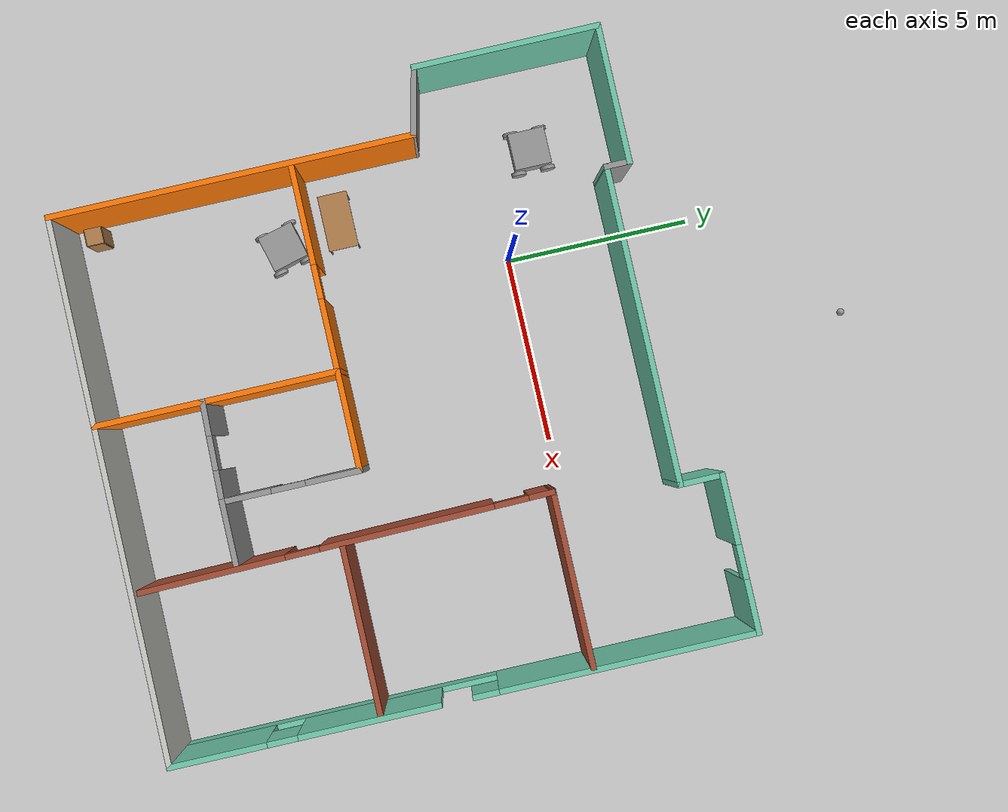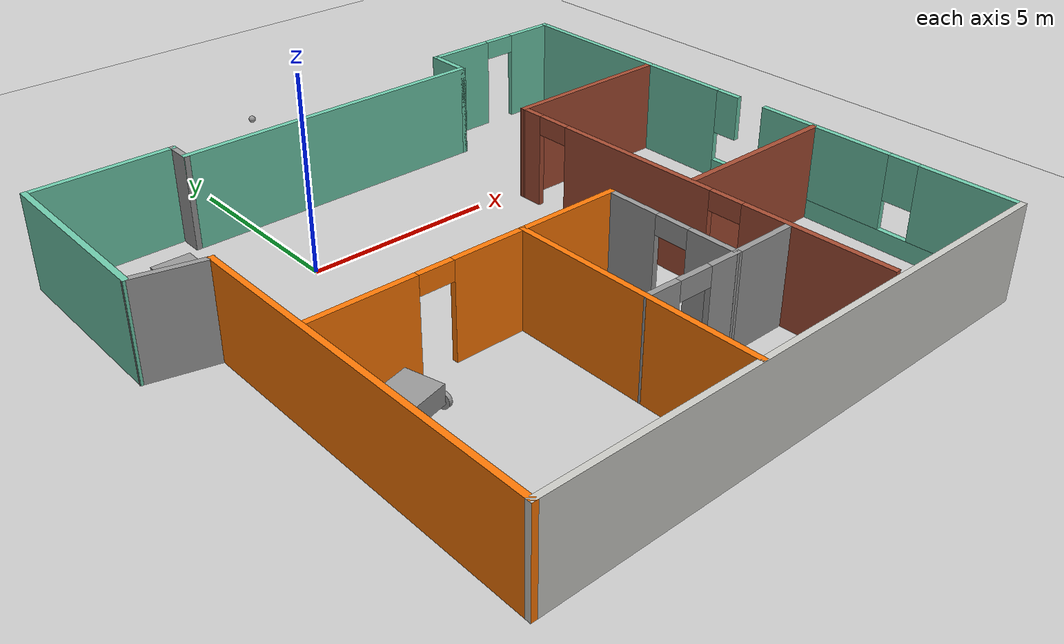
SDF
<sdf version="1.6">
 <world name="default">
  <plugin name="hello" filename="libhello.so"/>
  <light name="sun" type="directional">
   <pose>0 0 10 0 -0 0</pose>
   <diffuse>0.8 0.8 0.8 1</diffuse>
   <specular>0.2 0.2 0.2 1</specular>
   <attenuation>
    <range>1000</range>
    <constant>0.9</constant>
    <linear>0.01</linear>
    <quadratic>0.001</quadratic>
   </attenuation>
   <direction>-0.5 0.1 -0.9</direction>
  </light>
  <model name="ground_plane">
   <static>1</static>
   <link name="link">
    <collision name="collision">
     <geometry><plane><normal>0 0 1</normal><size>100 100</size></plane></geometry>
     <surface>
      <contact><collide_bitmask>65535</collide_bitmask></contact>
      <friction><ode><mu>100</mu><mu2>50</mu2></ode></friction>
     </surface>
    </collision>
    <visual name="visual">
     <cast_shadows>0</cast_shadows>
     <geometry><plane><normal>0 0 1</normal><size>100 100</size></plane></geometry>
     <material>
      <script><uri>file://media/materials/scripts/gazebo.material</uri><name>Gazebo/Grey</name></script>
     </material>
    </visual>
   </link>
  </model>
  <gravity>0 0 -9.8</gravity>
  <magnetic_field>6e-06 2.3e-05 -4.2e-05</magnetic_field>
  <atmosphere type="adiabatic"/>
  <physics name="default_physics" default="0" type="ode">
   <max_step_size>0.001</max_step_size>
   <real_time_factor>1</real_time_factor>
   <real_time_update_rate>1000</real_time_update_rate>
  </physics>
  <scene><ambient>0.4 0.4 0.4 1</ambient><background>0.7 0.7 0.7 1</background><shadows>1</shadows></scene>
  <spherical_coordinates>
   <surface_model>EARTH_WGS84</surface_model>
   <latitude_deg>0</latitude_deg>
   <longitude_deg>0</longitude_deg>
   <elevation>0</elevation>
   <heading_deg>0</heading_deg>
  </spherical_coordinates>
  <model name="Building">
   <pose>2.87741 -3.725 0 0 -0 0</pose>
   <link name="Wall_0">
    <collision name="Wall_0_Collision">
     <geometry><box><size>5 0.15 2.5</size></box></geometry>
     <pose>0 0 1.25 0 -0 0</pose>
    </collision>
    <visual name="Wall_0_Visual">
     <pose>0 0 1.25 0 -0 0</pose>
     <geometry><box><size>5 0.15 2.5</size></box></geometry>
     <material>
      <script><uri>file://media/materials/scripts/gazebo.material</uri><name>Gazebo/Grey</name></script>
      <ambient>0.435294 0.796078 0.67451 1</ambient>
     </material>
     <meta><layer>0</layer></meta>
    </visual>
    <pose>-8.01741 4.75 0 0 -0 1.5708</pose>
   </link>
   <link name="Wall_1">
    <collision name="Wall_1_Collision">
     <geometry><box><size>3.75 0.15 2.5</size></box></geometry>
     <pose>0 0 1.25 0 -0 0</pose>
    </collision>
    <visual name="Wall_1_Visual">
     <pose>0 0 1.25 0 -0 0</pose>
     <geometry><box><size>3.75 0.15 2.5</size></box></geometry>
     <material>
      <script><uri>file://media/materials/scripts/gazebo.material</uri><name>Gazebo/Grey</name></script>
      <ambient>0.435294 0.796078 0.67451 1</ambient>
     </material>
     <meta><layer>0</layer></meta>
    </visual>
    <pose>-6.21741 7.175 0 0 -0 0</pose>
   </link>
   <link name="Wall_11">
    <collision name="Wall_11_Collision">
     <geometry><box><size>4.75 0.15 2.5</size></box></geometry>
     <pose>0 0 1.25 0 -0 0</pose>
    </collision>
    <visual name="Wall_11_Visual">
     <pose>0 0 1.25 0 -0 0</pose>
     <geometry><box><size>4.75 0.15 2.5</size></box></geometry>
     <material>
      <script><uri>file://media/materials/scripts/gazebo.material</uri><name>Gazebo/Bricks</name></script>
      <ambient>1 1 1 1</ambient>
     </material>
     <meta><layer>0</layer></meta>
    </visual>
    <pose>5.69893 3.37565 0 0 -0 3.14159</pose>
   </link>
   <link name="Wall_12">
    <pose>3.48034 -2.04935 0 0 0 -1.55573</pose>
    <visual name="Wall_12_Visual_0">
     <pose>-5.13206 0 1.25 0 -0 0</pose>
     <geometry><box><size>0.690583 0.15 2.5</size></box></geometry>
     <material>
      <script><uri>file://media/materials/scripts/gazebo.material</uri><name>Gazebo/Bricks</name></script>
      <ambient>1 1 1 1</ambient>
     </material>
     <meta><layer>0</layer></meta>
    </visual>
    <collision name="Wall_12_Collision_0">
     <geometry><box><size>0.690583 0.15 2.5</size></box></geometry>
     <pose>-5.13206 0 1.25 0 -0 0</pose>
    </collision>
    <visual name="Wall_12_Visual_1">
     <pose>-1.59289 0 1.25 0 -0 0</pose>
     <geometry><box><size>4.58775 0.15 2.5</size></box></geometry>
     <material>
      <script><uri>file://media/materials/scripts/gazebo.material</uri><name>Gazebo/Bricks</name></script>
      <ambient>1 1 1 1</ambient>
     </material>
     <meta><layer>0</layer></meta>
    </visual>
    <collision name="Wall_12_Collision_1">
     <geometry><box><size>4.58775 0.15 2.5</size></box></geometry>
     <pose>-1.59289 0 1.25 0 -0 0</pose>
    </collision>
    <visual name="Wall_12_Visual_2">
     <pose>3.53917 0 1.25 0 -0 0</pose>
     <geometry><box><size>3.87637 0.15 2.5</size></box></geometry>
     <material>
      <script><uri>file://media/materials/scripts/gazebo.material</uri><name>Gazebo/Bricks</name></script>
      <ambient>1 1 1 1</ambient>
     </material>
     <meta><layer>0</layer></meta>
    </visual>
    <collision name="Wall_12_Collision_2">
     <geometry><box><size>3.87637 0.15 2.5</size></box></geometry>
     <pose>3.53917 0 1.25 0 -0 0</pose>
    </collision>
    <visual name="Wall_12_Visual_3">
     <pose>-4.33677 0 2.25 0 -0 0</pose>
     <geometry><box><size>0.9 0.15 0.5</size></box></geometry>
     <material>
      <script><uri>file://media/materials/scripts/gazebo.material</uri><name>Gazebo/Bricks</name></script>
      <ambient>1 1 1 1</ambient>
     </material>
     <meta><layer>0</layer></meta>
    </visual>
    <collision name="Wall_12_Collision_3">
     <geometry><box><size>0.9 0.15 0.5</size></box></geometry>
     <pose>-4.33677 0 2.25 0 -0 0</pose>
    </collision>
    <visual name="Wall_12_Visual_4">
     <pose>1.15098 0 2.25 0 -0 0</pose>
     <geometry><box><size>0.9 0.15 0.5</size></box></geometry>
     <material>
      <script><uri>file://media/materials/scripts/gazebo.material</uri><name>Gazebo/Bricks</name></script>
      <ambient>1 1 1 1</ambient>
     </material>
     <meta><layer>0</layer></meta>
    </visual>
    <collision name="Wall_12_Collision_4">
     <geometry><box><size>0.9 0.15 0.5</size></box></geometry>
     <pose>1.15098 0 2.25 0 -0 0</pose>
    </collision>
   </link>
   <link name="Wall_14">
    <collision name="Wall_14_Collision">
     <geometry><box><size>4.5 0.15 2.5</size></box></geometry>
     <pose>0 0 1.25 0 -0 0</pose>
    </collision>
    <visual name="Wall_14_Visual">
     <pose>0 0 1.25 0 -0 0</pose>
     <geometry><box><size>4.5 0.15 2.5</size></box></geometry>
     <material>
      <script><uri>file://media/materials/scripts/gazebo.material</uri><name>Gazebo/Bricks</name></script>
      <ambient>1 1 1 1</ambient>
     </material>
     <meta><layer>0</layer></meta>
    </visual>
    <pose>5.78905 -2.16535 0 0 -0 0</pose>
   </link>
   <link name="Wall_16">
    <pose>-3.50191 -1.30931 0 0 -0 0</pose>
    <visual name="Wall_16_Visual_0">
     <pose>-1.43943 0 1.25 0 -0 0</pose>
     <geometry><box><size>2.62114 0.15 2.5</size></box></geometry>
     <material>
      <script><uri>file://media/materials/scripts/gazebo.material</uri><name>Gazebo/Grey</name></script>
      <ambient>0.996078 0.47451 0.0196078 1</ambient>
     </material>
     <meta><layer>0</layer></meta>
    </visual>
    <collision name="Wall_16_Collision_0">
     <geometry><box><size>2.62114 0.15 2.5</size></box></geometry>
     <pose>-1.43943 0 1.25 0 -0 0</pose>
    </collision>
    <visual name="Wall_16_Visual_1">
     <pose>1.76057 0 1.25 0 -0 0</pose>
     <geometry><box><size>1.97886 0.15 2.5</size></box></geometry>
     <material>
      <script><uri>file://media/materials/scripts/gazebo.material</uri><name>Gazebo/Grey</name></script>
      <ambient>0.996078 0.47451 0.0196078 1</ambient>
     </material>
     <meta><layer>0</layer></meta>
    </visual>
    <collision name="Wall_16_Collision_1">
     <geometry><box><size>1.97886 0.15 2.5</size></box></geometry>
     <pose>1.76057 0 1.25 0 -0 0</pose>
    </collision>
    <visual name="Wall_16_Visual_2">
     <pose>0.32114 0 2.25 0 -0 0</pose>
     <geometry><box><size>0.9 0.15 0.5</size></box></geometry>
     <material>
      <script><uri>file://media/materials/scripts/gazebo.material</uri><name>Gazebo/Grey</name></script>
      <ambient>0.996078 0.47451 0.0196078 1</ambient>
     </material>
     <meta><layer>0</layer></meta>
    </visual>
    <collision name="Wall_16_Collision_2">
     <geometry><box><size>0.9 0.15 0.5</size></box></geometry>
     <pose>0.32114 0 2.25 0 -0 0</pose>
    </collision>
   </link>
   <link name="Wall_17">
    <collision name="Wall_17_Collision">
     <geometry><box><size>6.5 0.15 2.5</size></box></geometry>
     <pose>0 0 1.25 0 -0 0</pose>
    </collision>
    <visual name="Wall_17_Visual">
     <pose>0 0 1.25 0 -0 0</pose>
     <geometry><box><size>6.5 0.15 2.5</size></box></geometry>
     <material>
      <script><uri>file://media/materials/scripts/gazebo.material</uri><name>Gazebo/Grey</name></script>
      <ambient>0.996078 0.47451 0.0196078 1</ambient>
     </material>
     <meta><layer>0</layer></meta>
    </visual>
    <pose>-0.826909 -4.48431 0 0 0 -1.5708</pose>
   </link>
   <link name="Wall_19">
    <collision name="Wall_19_Collision">
     <geometry><box><size>2.75 0.15 2.5</size></box></geometry>
     <pose>0 0 1.25 0 -0 0</pose>
    </collision>
    <visual name="Wall_19_Visual">
     <pose>0 0 1.25 0 -0 0</pose>
     <geometry><box><size>2.75 0.15 2.5</size></box></geometry>
     <material>
      <script><uri>file://media/materials/scripts/gazebo.material</uri><name>Gazebo/Grey</name></script>
      <ambient>0.996078 0.47451 0.0196078 1</ambient>
     </material>
     <meta><layer>0</layer></meta>
    </visual>
    <pose>0.473091 -1.30931 0 0 -0 0</pose>
   </link>
   <link name="Wall_2">
    <collision name="Wall_2_Collision">
     <geometry><box><size>0.75 0.15 2.5</size></box></geometry>
     <pose>0 0 1.25 0 -0 0</pose>
    </collision>
    <visual name="Wall_2_Visual">
     <pose>0 0 1.25 0 -0 0</pose>
     <geometry><box><size>0.75 0.15 2.5</size></box></geometry>
     <material>
      <script><uri>file://media/materials/scripts/gazebo.material</uri><name>Gazebo/Grey</name></script>
      <ambient>1 1 1 1</ambient>
     </material>
     <meta><layer>0</layer></meta>
    </visual>
    <pose>-4.41741 6.875 0 0 0 -1.5708</pose>
   </link>
   <link name="Wall_20">
    <pose>1.77309 -3.10931 0 0 0 -1.5708</pose>
    <visual name="Wall_20_Visual_0">
     <pose>-1.12621 0 1.25 0 -0 0</pose>
     <geometry><box><size>1.49759 0.15 2.5</size></box></geometry>
     <material>
      <script><uri>file://media/materials/scripts/gazebo.material</uri><name>Gazebo/Grey</name></script>
      <ambient>1 1 1 1</ambient>
     </material>
     <meta><layer>0</layer></meta>
    </visual>
    <collision name="Wall_20_Collision_0">
     <geometry><box><size>1.49759 0.15 2.5</size></box></geometry>
     <pose>-1.12621 0 1.25 0 -0 0</pose>
    </collision>
    <visual name="Wall_20_Visual_1">
     <pose>1.19879 0 1.25 0 -0 0</pose>
     <geometry><box><size>1.35241 0.15 2.5</size></box></geometry>
     <material>
      <script><uri>file://media/materials/scripts/gazebo.material</uri><name>Gazebo/Grey</name></script>
      <ambient>1 1 1 1</ambient>
     </material>
     <meta><layer>0</layer></meta>
    </visual>
    <collision name="Wall_20_Collision_1">
     <geometry><box><size>1.35241 0.15 2.5</size></box></geometry>
     <pose>1.19879 0 1.25 0 -0 0</pose>
    </collision>
    <visual name="Wall_20_Visual_2">
     <pose>0.072587 0 2.25 0 -0 0</pose>
     <geometry><box><size>0.9 0.15 0.5</size></box></geometry>
     <material>
      <script><uri>file://media/materials/scripts/gazebo.material</uri><name>Gazebo/Grey</name></script>
      <ambient>1 1 1 1</ambient>
     </material>
     <meta><layer>0</layer></meta>
    </visual>
    <collision name="Wall_20_Collision_2">
     <geometry><box><size>0.9 0.15 0.5</size></box></geometry>
     <pose>0.072587 0 2.25 0 -0 0</pose>
    </collision>
   </link>
   <link name="Wall_21">
    <collision name="Wall_21_Collision">
     <geometry><box><size>1.75 0.15 2.5</size></box></geometry>
     <pose>0 0 1.25 0 -0 0</pose>
    </collision>
    <visual name="Wall_21_Visual">
     <pose>0 0 1.25 0 -0 0</pose>
     <geometry><box><size>1.75 0.15 2.5</size></box></geometry>
     <material>
      <script><uri>file://media/materials/scripts/gazebo.material</uri><name>Gazebo/Grey</name></script>
      <ambient>1 1 1 1</ambient>
     </material>
     <meta><layer>0</layer></meta>
    </visual>
    <pose>2.57309 -4.90931 0 0 -0 0</pose>
   </link>
   <link name="Wall_23">
    <pose>0.473216 -4.8749 0 0 0 -0.026471</pose>
    <visual name="Wall_23_Visual_0">
     <pose>-0.894992 0 1.25 0 -0 0</pose>
     <geometry><box><size>0.960678 0.15 2.5</size></box></geometry>
     <material>
      <script><uri>file://media/materials/scripts/gazebo.material</uri><name>Gazebo/Grey</name></script>
      <ambient>1 1 1 1</ambient>
     </material>
     <meta><layer>0</layer></meta>
    </visual>
    <collision name="Wall_23_Collision_0">
     <geometry><box><size>0.960678 0.15 2.5</size></box></geometry>
     <pose>-0.894992 0 1.25 0 -0 0</pose>
    </collision>
    <visual name="Wall_23_Visual_1">
     <pose>0.930339 0 1.25 0 -0 0</pose>
     <geometry><box><size>0.889983 0.15 2.5</size></box></geometry>
     <material>
      <script><uri>file://media/materials/scripts/gazebo.material</uri><name>Gazebo/Grey</name></script>
      <ambient>1 1 1 1</ambient>
     </material>
     <meta><layer>0</layer></meta>
    </visual>
    <collision name="Wall_23_Collision_1">
     <geometry><box><size>0.889983 0.15 2.5</size></box></geometry>
     <pose>0.930339 0 1.25 0 -0 0</pose>
    </collision>
    <visual name="Wall_23_Visual_2">
     <pose>0.035347 0 2.25 0 -0 0</pose>
     <geometry><box><size>0.9 0.15 0.5</size></box></geometry>
     <material>
      <script><uri>file://media/materials/scripts/gazebo.material</uri><name>Gazebo/Grey</name></script>
      <ambient>1 1 1 1</ambient>
     </material>
     <meta><layer>0</layer></meta>
    </visual>
    <collision name="Wall_23_Collision_2">
     <geometry><box><size>0.9 0.15 0.5</size></box></geometry>
     <pose>0.035347 0 2.25 0 -0 0</pose>
    </collision>
   </link>
   <link name="Wall_3">
    <collision name="Wall_3_Collision">
     <geometry><box><size>8.5 0.15 2.5</size></box></geometry>
     <pose>0 0 1.25 0 -0 0</pose>
    </collision>
    <visual name="Wall_3_Visual">
     <pose>0 0 1.25 0 -0 0</pose>
     <geometry><box><size>8.5 0.15 2.5</size></box></geometry>
     <material>
      <script><uri>file://media/materials/scripts/gazebo.material</uri><name>Gazebo/Grey</name></script>
      <ambient>0.435294 0.796078 0.67451 1</ambient>
     </material>
     <meta><layer>0</layer></meta>
    </visual>
    <pose>-0.242408 6.575 0 0 -0 0</pose>
   </link>
   <link name="Wall_4">
    <collision name="Wall_4_Collision">
     <geometry><box><size>1.25 0.15 2.5</size></box></geometry>
     <pose>0 0 1.25 0 -0 0</pose>
    </collision>
    <visual name="Wall_4_Visual">
     <pose>0 0 1.25 0 -0 0</pose>
     <geometry><box><size>1.25 0.15 2.5</size></box></geometry>
     <material>
      <script><uri>file://media/materials/scripts/gazebo.material</uri><name>Gazebo/Grey</name></script>
      <ambient>0.435294 0.796078 0.67451 1</ambient>
     </material>
     <meta><layer>0</layer></meta>
    </visual>
    <pose>3.93259 7.125 0 0 -0 1.5708</pose>
   </link>
   <link name="Wall_5">
    <pose>5.98259 7.675 0 0 -0 0</pose>
    <visual name="Wall_5_Visual_0">
     <pose>-1.17867 0 1.25 0 -0 0</pose>
     <geometry><box><size>1.89265 0.15 2.5</size></box></geometry>
     <material>
      <script><uri>file://media/materials/scripts/gazebo.material</uri><name>Gazebo/Grey</name></script>
      <ambient>0.435294 0.796078 0.67451 1</ambient>
     </material>
     <meta><layer>0</layer></meta>
    </visual>
    <collision name="Wall_5_Collision_0">
     <geometry><box><size>1.89265 0.15 2.5</size></box></geometry>
     <pose>-1.17867 0 1.25 0 -0 0</pose>
    </collision>
    <visual name="Wall_5_Visual_1">
     <pose>1.39633 0 1.25 0 -0 0</pose>
     <geometry><box><size>1.45735 0.15 2.5</size></box></geometry>
     <material>
      <script><uri>file://media/materials/scripts/gazebo.material</uri><name>Gazebo/Grey</name></script>
      <ambient>0.435294 0.796078 0.67451 1</ambient>
     </material>
     <meta><layer>0</layer></meta>
    </visual>
    <collision name="Wall_5_Collision_1">
     <geometry><box><size>1.45735 0.15 2.5</size></box></geometry>
     <pose>1.39633 0 1.25 0 -0 0</pose>
    </collision>
    <visual name="Wall_5_Visual_2">
     <pose>0.217649 0 2.25 0 -0 0</pose>
     <geometry><box><size>0.9 0.15 0.5</size></box></geometry>
     <material>
      <script><uri>file://media/materials/scripts/gazebo.material</uri><name>Gazebo/Grey</name></script>
      <ambient>0.435294 0.796078 0.67451 1</ambient>
     </material>
     <meta><layer>0</layer></meta>
    </visual>
    <collision name="Wall_5_Collision_2">
     <geometry><box><size>0.9 0.15 0.5</size></box></geometry>
     <pose>0.217649 0 2.25 0 -0 0</pose>
    </collision>
   </link>
   <link name="Wall_6">
    <pose>8.03259 0 0 0 0 -1.5708</pose>
    <visual name="Wall_6_Visual_0">
     <pose>-4.32989 0 1.25 0 -0 0</pose>
     <geometry><box><size>6.84023 0.15 2.5</size></box></geometry>
     <material>
      <script><uri>file://media/materials/scripts/gazebo.material</uri><name>Gazebo/Grey</name></script>
      <ambient>0.435294 0.796078 0.67451 1</ambient>
     </material>
     <meta><layer>0</layer></meta>
    </visual>
    <collision name="Wall_6_Collision_0">
     <geometry><box><size>6.84023 0.15 2.5</size></box></geometry>
     <pose>-4.32989 0 1.25 0 -0 0</pose>
    </collision>
    <visual name="Wall_6_Visual_1">
     <pose>3.42011 0 0.25 0 -0 0</pose>
     <geometry><box><size>8.65977 0.15 0.5</size></box></geometry>
     <material>
      <script><uri>file://media/materials/scripts/gazebo.material</uri><name>Gazebo/Grey</name></script>
      <ambient>0.435294 0.796078 0.67451 1</ambient>
     </material>
     <meta><layer>0</layer></meta>
    </visual>
    <collision name="Wall_6_Collision_1">
     <geometry><box><size>8.65977 0.15 0.5</size></box></geometry>
     <pose>3.42011 0 0.25 0 -0 0</pose>
    </collision>
    <visual name="Wall_6_Visual_2">
     <pose>2.45962 0 1.5 0 -0 0</pose>
     <geometry><box><size>3.74771 0.15 2</size></box></geometry>
     <material>
      <script><uri>file://media/materials/scripts/gazebo.material</uri><name>Gazebo/Grey</name></script>
      <ambient>0.435294 0.796078 0.67451 1</ambient>
     </material>
     <meta><layer>0</layer></meta>
    </visual>
    <collision name="Wall_6_Collision_2">
     <geometry><box><size>3.74771 0.15 2</size></box></geometry>
     <pose>2.45962 0 1.5 0 -0 0</pose>
    </collision>
    <visual name="Wall_6_Visual_3">
     <pose>6.44174 0 1.5 0 -0 0</pose>
     <geometry><box><size>2.61653 0.15 2</size></box></geometry>
     <material>
      <script><uri>file://media/materials/scripts/gazebo.material</uri><name>Gazebo/Grey</name></script>
      <ambient>0.435294 0.796078 0.67451 1</ambient>
     </material>
     <meta><layer>0</layer></meta>
    </visual>
    <collision name="Wall_6_Collision_3">
     <geometry><box><size>2.61653 0.15 2</size></box></geometry>
     <pose>6.44174 0 1.5 0 -0 0</pose>
    </collision>
    <visual name="Wall_6_Visual_4">
     <pose>-0.562007 0 1.9 0 -0 0</pose>
     <geometry><box><size>0.695533 0.15 1.2</size></box></geometry>
     <material>
      <script><uri>file://media/materials/scripts/gazebo.material</uri><name>Gazebo/Grey</name></script>
      <ambient>0.435294 0.796078 0.67451 1</ambient>
     </material>
     <meta><layer>0</layer></meta>
    </visual>
    <collision name="Wall_6_Collision_4">
     <geometry><box><size>0.695533 0.15 1.2</size></box></geometry>
     <pose>-0.562007 0 1.9 0 -0 0</pose>
    </collision>
    <visual name="Wall_6_Visual_5">
     <pose>4.73347 0 1.9 0 -0 0</pose>
     <geometry><box><size>0.8 0.15 1.2</size></box></geometry>
     <material>
      <script><uri>file://media/materials/scripts/gazebo.material</uri><name>Gazebo/Grey</name></script>
      <ambient>0.435294 0.796078 0.67451 1</ambient>
     </material>
     <meta><layer>0</layer></meta>
    </visual>
    <collision name="Wall_6_Collision_5">
     <geometry><box><size>0.8 0.15 1.2</size></box></geometry>
     <pose>4.73347 0 1.9 0 -0 0</pose>
    </collision>
   </link>
   <link name="Wall_7">
    <collision name="Wall_7_Collision">
     <geometry><box><size>14.5 0.15 2.5</size></box></geometry>
     <pose>0 0 1.25 0 -0 0</pose>
    </collision>
    <visual name="Wall_7_Visual">
     <pose>0 0 1.25 0 -0 0</pose>
     <geometry><box><size>14.5 0.15 2.5</size></box></geometry>
     <material>
      <script><uri>file://media/materials/scripts/gazebo.material</uri><name>Gazebo/CeilingTiled</name></script>
      <ambient>1 1 1 1</ambient>
     </material>
     <meta><layer>0</layer></meta>
    </visual>
    <pose>0.857592 -7.675 0 0 -0 3.14159</pose>
   </link>
   <link name="Wall_8">
    <collision name="Wall_8_Collision">
     <geometry><box><size>9.75 0.15 2.5</size></box></geometry>
     <pose>0 0 1.25 0 -0 0</pose>
    </collision>
    <visual name="Wall_8_Visual">
     <pose>0 0 1.25 0 -0 0</pose>
     <geometry><box><size>9.75 0.15 2.5</size></box></geometry>
     <material>
      <script><uri>file://media/materials/scripts/gazebo.material</uri><name>Gazebo/Grey</name></script>
      <ambient>0.996078 0.47451 0.0196078 1</ambient>
     </material>
     <meta><layer>0</layer></meta>
    </visual>
    <pose>-6.31741 -2.875 0 0 -0 1.5708</pose>
   </link>
   <link name="Wall_9">
    <collision name="Wall_9_Collision">
     <geometry><box><size>1.89643 0.15 2.5</size></box></geometry>
     <pose>0 0 1.25 0 -0 0</pose>
    </collision>
    <visual name="Wall_9_Visual">
     <pose>0 0 1.25 0 -0 0</pose>
     <geometry><box><size>1.89643 0.15 2.5</size></box></geometry>
     <material>
      <script><uri>file://media/materials/scripts/gazebo.material</uri><name>Gazebo/Grey</name></script>
      <ambient>1 1 1 1</ambient>
     </material>
     <meta><layer>0</layer></meta>
    </visual>
    <pose>-7.16741 2.125 0 0 -0 2.9105</pose>
   </link>
   <static>1</static>
  </model>
  <model name="4WheelRobot">
   <link name="link_0">
    <pose>0 0 0.16 0 -0 0</pose>
    <inertial>
     <mass>1</mass>
     <inertia>
      <ixx>0.166667</ixx>
      <ixy>0</ixy>
      <ixz>0</ixz>
      <iyy>0.166667</iyy>
      <iyz>0</iyz>
      <izz>0.166667</izz>
     </inertia>
    </inertial>
    <visual name="visual">
     <geometry><box><size>1 1 0.5</size></box></geometry>
     <material>
      <lighting>1</lighting>
      <script><uri>file://media/materials/scripts/gazebo.material</uri><name>Gazebo/Grey</name></script>
      <shader type="pixel"><normal_map>__default__</normal_map></shader>
      <ambient>0.3 0.3 0.3 1</ambient>
      <diffuse>0.7 0.7 0.7 1</diffuse>
      <specular>0.01 0.01 0.01 1</specular>
      <emissive>0 0 0 1</emissive>
     </material>
    </visual>
    <collision name="collision">
     <geometry><box><size>1 1 0.5</size></box></geometry>
     <surface>
      <friction>
       <ode><mu>1</mu><mu2>1</mu2><fdir1>0 0 0</fdir1><slip1>0</slip1><slip2>0</slip2></ode>
       <torsional>
        <coefficient>1</coefficient>
        <patch_radius>0</patch_radius>
        <surface_radius>0</surface_radius>
        <use_patch_radius>1</use_patch_radius>
        <ode><slip>0</slip></ode>
       </torsional>
      </friction>
      <bounce><restitution_coefficient>0</restitution_coefficient><threshold>1e+06</threshold></bounce>
      <contact>
       <collide_without_contact>0</collide_without_contact>
       <collide_without_contact_bitmask>1</collide_without_contact_bitmask>
       <collide_bitmask>1</collide_bitmask>
       <ode>
        <soft_cfm>0</soft_cfm>
        <soft_erp>0.2</soft_erp>
        <kp>1e+13</kp>
        <kd>1</kd>
        <max_vel>0.01</max_vel>
        <min_depth>0</min_depth>
       </ode>
       <bullet>
        <split_impulse>1</split_impulse>
        <split_impulse_penetration_threshold>-0.01</split_impulse_penetration_threshold>
        <soft_cfm>0</soft_cfm>
        <soft_erp>0.2</soft_erp>
        <kp>1e+13</kp>
        <kd>1</kd>
       </bullet>
      </contact>
     </surface>
    </collision>
   </link>
   <link name="link_1_clone">
    <pose>0.550001 -0.4 -0.04 0 -0 0</pose>
    <inertial>
     <mass>1</mass>
     <inertia><ixx>0.145833</ixx><ixy>0</ixy><ixz>0</ixz><iyy>0.145833</iyy><iyz>0</iyz><izz>0.125</izz></inertia>
    </inertial>
    <visual name="visual">
     <pose>0 0 0 3.14159 1.57079 3.14159</pose>
     <geometry><cylinder><radius>0.2</radius><length>0.1</length></cylinder></geometry>
     <material>
      <lighting>1</lighting>
      <script><uri>file://media/materials/scripts/gazebo.material</uri><name>Gazebo/Grey</name></script>
      <shader type="pixel"><normal_map>__default__</normal_map></shader>
      <ambient>0.3 0.3 0.3 1</ambient>
      <diffuse>0.7 0.7 0.7 1</diffuse>
      <specular>0.01 0.01 0.01 1</specular>
      <emissive>0 0 0 1</emissive>
     </material>
    </visual>
    <collision name="collision">
     <pose>0 0 0 3.14159 1.57079 3.14159</pose>
     <geometry><cylinder><radius>0.2</radius><length>0.1</length></cylinder></geometry>
     <surface>
      <friction>
       <ode><mu>1</mu><mu2>1</mu2><fdir1>0 0 0</fdir1><slip1>0</slip1><slip2>0</slip2></ode>
       <torsional>
        <coefficient>1</coefficient>
        <patch_radius>0</patch_radius>
        <surface_radius>0</surface_radius>
        <use_patch_radius>1</use_patch_radius>
        <ode><slip>0</slip></ode>
       </torsional>
      </friction>
      <bounce><restitution_coefficient>0</restitution_coefficient><threshold>1e+06</threshold></bounce>
      <contact>
       <collide_without_contact>0</collide_without_contact>
       <collide_without_contact_bitmask>1</collide_without_contact_bitmask>
       <collide_bitmask>1</collide_bitmask>
       <ode>
        <soft_cfm>0</soft_cfm>
        <soft_erp>0.2</soft_erp>
        <kp>1e+13</kp>
        <kd>1</kd>
        <max_vel>0.01</max_vel>
        <min_depth>0</min_depth>
       </ode>
       <bullet>
        <split_impulse>1</split_impulse>
        <split_impulse_penetration_threshold>-0.01</split_impulse_penetration_threshold>
        <soft_cfm>0</soft_cfm>
        <soft_erp>0.2</soft_erp>
        <kp>1e+13</kp>
        <kd>1</kd>
       </bullet>
      </contact>
     </surface>
    </collision>
   </link>
   <link name="link_1_clone_clone">
    <pose>-0.550001 0.4 -0.04 0 -0 0</pose>
    <inertial>
     <mass>1</mass>
     <inertia><ixx>0.145833</ixx><ixy>0</ixy><ixz>0</ixz><iyy>0.145833</iyy><iyz>0</iyz><izz>0.125</izz></inertia>
    </inertial>
    <visual name="visual">
     <pose>0 0 0 3.14159 1.57079 3.14159</pose>
     <geometry><cylinder><radius>0.2</radius><length>0.1</length></cylinder></geometry>
     <material>
      <lighting>1</lighting>
      <script><uri>file://media/materials/scripts/gazebo.material</uri><name>Gazebo/Grey</name></script>
      <shader type="pixel"><normal_map>__default__</normal_map></shader>
      <ambient>0.3 0.3 0.3 1</ambient>
      <diffuse>0.7 0.7 0.7 1</diffuse>
      <specular>0.01 0.01 0.01 1</specular>
      <emissive>0 0 0 1</emissive>
     </material>
    </visual>
    <collision name="collision">
     <pose>0 0 0 3.14159 1.57079 3.14159</pose>
     <geometry><cylinder><radius>0.2</radius><length>0.1</length></cylinder></geometry>
     <surface>
      <friction>
       <ode><mu>1</mu><mu2>1</mu2><fdir1>0 0 0</fdir1><slip1>0</slip1><slip2>0</slip2></ode>
       <torsional>
        <coefficient>1</coefficient>
        <patch_radius>0</patch_radius>
        <surface_radius>0</surface_radius>
        <use_patch_radius>1</use_patch_radius>
        <ode><slip>0</slip></ode>
       </torsional>
      </friction>
      <bounce><restitution_coefficient>0</restitution_coefficient><threshold>1e+06</threshold></bounce>
      <contact>
       <collide_without_contact>0</collide_without_contact>
       <collide_without_contact_bitmask>1</collide_without_contact_bitmask>
       <collide_bitmask>1</collide_bitmask>
       <ode>
        <soft_cfm>0</soft_cfm>
        <soft_erp>0.2</soft_erp>
        <kp>1e+13</kp>
        <kd>1</kd>
        <max_vel>0.01</max_vel>
        <min_depth>0</min_depth>
       </ode>
       <bullet>
        <split_impulse>1</split_impulse>
        <split_impulse_penetration_threshold>-0.01</split_impulse_penetration_threshold>
        <soft_cfm>0</soft_cfm>
        <soft_erp>0.2</soft_erp>
        <kp>1e+13</kp>
        <kd>1</kd>
       </bullet>
      </contact>
     </surface>
    </collision>
   </link>
   <link name="link_1_clone_clone_0">
    <pose>-0.550001 -0.4 -0.04 0 -0 0</pose>
    <inertial>
     <mass>1</mass>
     <inertia><ixx>0.145833</ixx><ixy>0</ixy><ixz>0</ixz><iyy>0.145833</iyy><iyz>0</iyz><izz>0.125</izz></inertia>
    </inertial>
    <visual name="visual">
     <pose>0 0 0 3.14159 1.57079 3.14159</pose>
     <geometry><cylinder><radius>0.2</radius><length>0.1</length></cylinder></geometry>
     <material>
      <lighting>1</lighting>
      <script><uri>file://media/materials/scripts/gazebo.material</uri><name>Gazebo/Grey</name></script>
      <shader type="pixel"><normal_map>__default__</normal_map></shader>
      <ambient>0.3 0.3 0.3 1</ambient>
      <diffuse>0.7 0.7 0.7 1</diffuse>
      <specular>0.01 0.01 0.01 1</specular>
      <emissive>0 0 0 1</emissive>
     </material>
    </visual>
    <collision name="collision">
     <pose>0 0 0 3.14159 1.57079 3.14159</pose>
     <geometry><cylinder><radius>0.2</radius><length>0.1</length></cylinder></geometry>
     <surface>
      <friction>
       <ode><mu>1</mu><mu2>1</mu2><fdir1>0 0 0</fdir1><slip1>0</slip1><slip2>0</slip2></ode>
       <torsional>
        <coefficient>1</coefficient>
        <patch_radius>0</patch_radius>
        <surface_radius>0</surface_radius>
        <use_patch_radius>1</use_patch_radius>
        <ode><slip>0</slip></ode>
       </torsional>
      </friction>
      <bounce><restitution_coefficient>0</restitution_coefficient><threshold>1e+06</threshold></bounce>
      <contact>
       <collide_without_contact>0</collide_without_contact>
       <collide_without_contact_bitmask>1</collide_without_contact_bitmask>
       <collide_bitmask>1</collide_bitmask>
       <ode>
        <soft_cfm>0</soft_cfm>
        <soft_erp>0.2</soft_erp>
        <kp>1e+13</kp>
        <kd>1</kd>
        <max_vel>0.01</max_vel>
        <min_depth>0</min_depth>
       </ode>
       <bullet>
        <split_impulse>1</split_impulse>
        <split_impulse_penetration_threshold>-0.01</split_impulse_penetration_threshold>
        <soft_cfm>0</soft_cfm>
        <soft_erp>0.2</soft_erp>
        <kp>1e+13</kp>
        <kd>1</kd>
       </bullet>
      </contact>
     </surface>
    </collision>
   </link>
   <link name="link_1_clone_clone_1">
    <pose>0.550001 0.4 -0.04 0 -0 0</pose>
    <inertial>
     <mass>1</mass>
     <inertia><ixx>0.145833</ixx><ixy>0</ixy><ixz>0</ixz><iyy>0.145833</iyy><iyz>0</iyz><izz>0.125</izz></inertia>
    </inertial>
    <visual name="visual">
     <pose>0 0 0 3.14159 1.57079 3.14159</pose>
     <geometry><cylinder><radius>0.2</radius><length>0.1</length></cylinder></geometry>
     <material>
      <lighting>1</lighting>
      <script><uri>file://media/materials/scripts/gazebo.material</uri><name>Gazebo/Grey</name></script>
      <shader type="pixel"><normal_map>__default__</normal_map></shader>
      <ambient>0.3 0.3 0.3 1</ambient>
      <diffuse>0.7 0.7 0.7 1</diffuse>
      <specular>0.01 0.01 0.01 1</specular>
      <emissive>0 0 0 1</emissive>
     </material>
    </visual>
    <collision name="collision">
     <pose>0 0 0 3.14159 1.57079 3.14159</pose>
     <geometry><cylinder><radius>0.2</radius><length>0.1</length></cylinder></geometry>
     <surface>
      <friction>
       <ode><mu>1</mu><mu2>1</mu2><fdir1>0 0 0</fdir1><slip1>0</slip1><slip2>0</slip2></ode>
       <torsional>
        <coefficient>1</coefficient>
        <patch_radius>0</patch_radius>
        <surface_radius>0</surface_radius>
        <use_patch_radius>1</use_patch_radius>
        <ode><slip>0</slip></ode>
       </torsional>
      </friction>
      <bounce><restitution_coefficient>0</restitution_coefficient><threshold>1e+06</threshold></bounce>
      <contact>
       <collide_without_contact>0</collide_without_contact>
       <collide_without_contact_bitmask>1</collide_without_contact_bitmask>
       <collide_bitmask>1</collide_bitmask>
       <ode>
        <soft_cfm>0</soft_cfm>
        <soft_erp>0.2</soft_erp>
        <kp>1e+13</kp>
        <kd>1</kd>
        <max_vel>0.01</max_vel>
        <min_depth>0</min_depth>
       </ode>
       <bullet>
        <split_impulse>1</split_impulse>
        <split_impulse_penetration_threshold>-0.01</split_impulse_penetration_threshold>
        <soft_cfm>0</soft_cfm>
        <soft_erp>0.2</soft_erp>
        <kp>1e+13</kp>
        <kd>1</kd>
       </bullet>
      </contact>
     </surface>
    </collision>
   </link>
   <joint name="link_0_JOINT_2" type="revolute">
    <parent>link_0</parent>
    <child>link_1_clone_clone_0</child>
    <pose>0 0 0 -0.01 0 0</pose>
    <axis>
     <xyz>0.04 0 0</xyz>
     <use_parent_model_frame>0</use_parent_model_frame>
     <limit>
      <lower>-1.79769e+308</lower>
      <upper>1.79769e+308</upper>
      <effort>-1</effort>
      <velocity>-1</velocity>
     </limit>
     <dynamics>
      <spring_reference>0</spring_reference>
      <spring_stiffness>0</spring_stiffness>
      <damping>0</damping>
     </dynamics>
    </axis>
    <physics>
     <ode><limit><cfm>0</cfm><erp>0.2</erp></limit><suspension><cfm>0</cfm><erp>0.2</erp></suspension></ode>
    </physics>
   </joint>
   <joint name="link_0_JOINT_3" type="revolute">
    <parent>link_0</parent>
    <child>link_1_clone</child>
    <axis>
     <xyz>1 0 0</xyz>
     <use_parent_model_frame>0</use_parent_model_frame>
     <limit>
      <lower>-1.79769e+308</lower>
      <upper>1.79769e+308</upper>
      <effort>-1</effort>
      <velocity>-1</velocity>
     </limit>
     <dynamics>
      <spring_reference>0</spring_reference>
      <spring_stiffness>0</spring_stiffness>
      <damping>0</damping>
     </dynamics>
    </axis>
    <physics>
     <ode><limit><cfm>0</cfm><erp>0.2</erp></limit><suspension><cfm>0</cfm><erp>0.2</erp></suspension></ode>
    </physics>
   </joint>
   <joint name="link_0_JOINT_4" type="revolute">
    <parent>link_0</parent>
    <child>link_1_clone_clone</child>
    <axis>
     <xyz>1 0 0</xyz>
     <use_parent_model_frame>0</use_parent_model_frame>
     <limit>
      <lower>-1.79769e+308</lower>
      <upper>1.79769e+308</upper>
      <effort>-1</effort>
      <velocity>-1</velocity>
     </limit>
     <dynamics>
      <spring_reference>0</spring_reference>
      <spring_stiffness>0</spring_stiffness>
      <damping>0</damping>
     </dynamics>
    </axis>
    <physics>
     <ode><limit><cfm>0</cfm><erp>0.2</erp></limit><suspension><cfm>0</cfm><erp>0.2</erp></suspension></ode>
    </physics>
   </joint>
   <joint name="link_0_JOINT_5" type="revolute">
    <parent>link_0</parent>
    <child>link_1_clone_clone_1</child>
    <axis>
     <xyz>1 0 0</xyz>
     <use_parent_model_frame>0</use_parent_model_frame>
     <limit>
      <lower>-1.79769e+308</lower>
      <upper>1.79769e+308</upper>
      <effort>-1</effort>
      <velocity>-1</velocity>
     </limit>
     <dynamics>
      <spring_reference>0</spring_reference>
      <spring_stiffness>0</spring_stiffness>
      <damping>0</damping>
     </dynamics>
    </axis>
    <physics>
     <ode><limit><cfm>0</cfm><erp>0.2</erp></limit><suspension><cfm>0</cfm><erp>0.2</erp></suspension></ode>
    </physics>
   </joint>
   <static>0</static>
   <pose>-2.79331 1.21554 0.239996 -8e-06 -1e-06 0.002184</pose>
  </model>
  <model name="4WheelRobot_0">
   <link name="link_0">
    <pose>0 0 0.16 0 -0 0</pose>
    <inertial>
     <mass>1</mass>
     <inertia>
      <ixx>0.166667</ixx>
      <ixy>0</ixy>
      <ixz>0</ixz>
      <iyy>0.166667</iyy>
      <iyz>0</iyz>
      <izz>0.166667</izz>
     </inertia>
    </inertial>
    <visual name="visual">
     <geometry><box><size>1 1 0.5</size></box></geometry>
     <material>
      <lighting>1</lighting>
      <script><uri>file://media/materials/scripts/gazebo.material</uri><name>Gazebo/Grey</name></script>
      <shader type="pixel"><normal_map>__default__</normal_map></shader>
      <ambient>0.3 0.3 0.3 1</ambient>
      <diffuse>0.7 0.7 0.7 1</diffuse>
      <specular>0.01 0.01 0.01 1</specular>
      <emissive>0 0 0 1</emissive>
     </material>
    </visual>
    <collision name="collision">
     <geometry><box><size>1 1 0.5</size></box></geometry>
     <surface>
      <friction>
       <ode><mu>1</mu><mu2>1</mu2><fdir1>0 0 0</fdir1><slip1>0</slip1><slip2>0</slip2></ode>
       <torsional>
        <coefficient>1</coefficient>
        <patch_radius>0</patch_radius>
        <surface_radius>0</surface_radius>
        <use_patch_radius>1</use_patch_radius>
        <ode><slip>0</slip></ode>
       </torsional>
      </friction>
      <bounce><restitution_coefficient>0</restitution_coefficient><threshold>1e+06</threshold></bounce>
      <contact>
       <collide_without_contact>0</collide_without_contact>
       <collide_without_contact_bitmask>1</collide_without_contact_bitmask>
       <collide_bitmask>1</collide_bitmask>
       <ode>
        <soft_cfm>0</soft_cfm>
        <soft_erp>0.2</soft_erp>
        <kp>1e+13</kp>
        <kd>1</kd>
        <max_vel>0.01</max_vel>
        <min_depth>0</min_depth>
       </ode>
       <bullet>
        <split_impulse>1</split_impulse>
        <split_impulse_penetration_threshold>-0.01</split_impulse_penetration_threshold>
        <soft_cfm>0</soft_cfm>
        <soft_erp>0.2</soft_erp>
        <kp>1e+13</kp>
        <kd>1</kd>
       </bullet>
      </contact>
     </surface>
    </collision>
   </link>
   <link name="link_1_clone">
    <pose>0.550001 -0.4 -0.04 0 -0 0</pose>
    <inertial>
     <mass>1</mass>
     <inertia><ixx>0.145833</ixx><ixy>0</ixy><ixz>0</ixz><iyy>0.145833</iyy><iyz>0</iyz><izz>0.125</izz></inertia>
    </inertial>
    <visual name="visual">
     <pose>0 0 0 3.14159 1.57079 3.14159</pose>
     <geometry><cylinder><radius>0.2</radius><length>0.1</length></cylinder></geometry>
     <material>
      <lighting>1</lighting>
      <script><uri>file://media/materials/scripts/gazebo.material</uri><name>Gazebo/Grey</name></script>
      <shader type="pixel"><normal_map>__default__</normal_map></shader>
      <ambient>0.3 0.3 0.3 1</ambient>
      <diffuse>0.7 0.7 0.7 1</diffuse>
      <specular>0.01 0.01 0.01 1</specular>
      <emissive>0 0 0 1</emissive>
     </material>
    </visual>
    <collision name="collision">
     <pose>0 0 0 3.14159 1.57079 3.14159</pose>
     <geometry><cylinder><radius>0.2</radius><length>0.1</length></cylinder></geometry>
     <surface>
      <friction>
       <ode><mu>1</mu><mu2>1</mu2><fdir1>0 0 0</fdir1><slip1>0</slip1><slip2>0</slip2></ode>
       <torsional>
        <coefficient>1</coefficient>
        <patch_radius>0</patch_radius>
        <surface_radius>0</surface_radius>
        <use_patch_radius>1</use_patch_radius>
        <ode><slip>0</slip></ode>
       </torsional>
      </friction>
      <bounce><restitution_coefficient>0</restitution_coefficient><threshold>1e+06</threshold></bounce>
      <contact>
       <collide_without_contact>0</collide_without_contact>
       <collide_without_contact_bitmask>1</collide_without_contact_bitmask>
       <collide_bitmask>1</collide_bitmask>
       <ode>
        <soft_cfm>0</soft_cfm>
        <soft_erp>0.2</soft_erp>
        <kp>1e+13</kp>
        <kd>1</kd>
        <max_vel>0.01</max_vel>
        <min_depth>0</min_depth>
       </ode>
       <bullet>
        <split_impulse>1</split_impulse>
        <split_impulse_penetration_threshold>-0.01</split_impulse_penetration_threshold>
        <soft_cfm>0</soft_cfm>
        <soft_erp>0.2</soft_erp>
        <kp>1e+13</kp>
        <kd>1</kd>
       </bullet>
      </contact>
     </surface>
    </collision>
   </link>
   <link name="link_1_clone_clone">
    <pose>-0.550001 0.4 -0.04 0 -0 0</pose>
    <inertial>
     <mass>1</mass>
     <inertia><ixx>0.145833</ixx><ixy>0</ixy><ixz>0</ixz><iyy>0.145833</iyy><iyz>0</iyz><izz>0.125</izz></inertia>
    </inertial>
    <visual name="visual">
     <pose>0 0 0 3.14159 1.57079 3.14159</pose>
     <geometry><cylinder><radius>0.2</radius><length>0.1</length></cylinder></geometry>
     <material>
      <lighting>1</lighting>
      <script><uri>file://media/materials/scripts/gazebo.material</uri><name>Gazebo/Grey</name></script>
      <shader type="pixel"><normal_map>__default__</normal_map></shader>
      <ambient>0.3 0.3 0.3 1</ambient>
      <diffuse>0.7 0.7 0.7 1</diffuse>
      <specular>0.01 0.01 0.01 1</specular>
      <emissive>0 0 0 1</emissive>
     </material>
    </visual>
    <collision name="collision">
     <pose>0 0 0 3.14159 1.57079 3.14159</pose>
     <geometry><cylinder><radius>0.2</radius><length>0.1</length></cylinder></geometry>
     <surface>
      <friction>
       <ode><mu>1</mu><mu2>1</mu2><fdir1>0 0 0</fdir1><slip1>0</slip1><slip2>0</slip2></ode>
       <torsional>
        <coefficient>1</coefficient>
        <patch_radius>0</patch_radius>
        <surface_radius>0</surface_radius>
        <use_patch_radius>1</use_patch_radius>
        <ode><slip>0</slip></ode>
       </torsional>
      </friction>
      <bounce><restitution_coefficient>0</restitution_coefficient><threshold>1e+06</threshold></bounce>
      <contact>
       <collide_without_contact>0</collide_without_contact>
       <collide_without_contact_bitmask>1</collide_without_contact_bitmask>
       <collide_bitmask>1</collide_bitmask>
       <ode>
        <soft_cfm>0</soft_cfm>
        <soft_erp>0.2</soft_erp>
        <kp>1e+13</kp>
        <kd>1</kd>
        <max_vel>0.01</max_vel>
        <min_depth>0</min_depth>
       </ode>
       <bullet>
        <split_impulse>1</split_impulse>
        <split_impulse_penetration_threshold>-0.01</split_impulse_penetration_threshold>
        <soft_cfm>0</soft_cfm>
        <soft_erp>0.2</soft_erp>
        <kp>1e+13</kp>
        <kd>1</kd>
       </bullet>
      </contact>
     </surface>
    </collision>
   </link>
   <link name="link_1_clone_clone_0">
    <pose>-0.550001 -0.4 -0.04 0 -0 0</pose>
    <inertial>
     <mass>1</mass>
     <inertia><ixx>0.145833</ixx><ixy>0</ixy><ixz>0</ixz><iyy>0.145833</iyy><iyz>0</iyz><izz>0.125</izz></inertia>
    </inertial>
    <visual name="visual">
     <pose>0 0 0 3.14159 1.57079 3.14159</pose>
     <geometry><cylinder><radius>0.2</radius><length>0.1</length></cylinder></geometry>
     <material>
      <lighting>1</lighting>
      <script><uri>file://media/materials/scripts/gazebo.material</uri><name>Gazebo/Grey</name></script>
      <shader type="pixel"><normal_map>__default__</normal_map></shader>
      <ambient>0.3 0.3 0.3 1</ambient>
      <diffuse>0.7 0.7 0.7 1</diffuse>
      <specular>0.01 0.01 0.01 1</specular>
      <emissive>0 0 0 1</emissive>
     </material>
    </visual>
    <collision name="collision">
     <pose>0 0 0 3.14159 1.57079 3.14159</pose>
     <geometry><cylinder><radius>0.2</radius><length>0.1</length></cylinder></geometry>
     <surface>
      <friction>
       <ode><mu>1</mu><mu2>1</mu2><fdir1>0 0 0</fdir1><slip1>0</slip1><slip2>0</slip2></ode>
       <torsional>
        <coefficient>1</coefficient>
        <patch_radius>0</patch_radius>
        <surface_radius>0</surface_radius>
        <use_patch_radius>1</use_patch_radius>
        <ode><slip>0</slip></ode>
       </torsional>
      </friction>
      <bounce><restitution_coefficient>0</restitution_coefficient><threshold>1e+06</threshold></bounce>
      <contact>
       <collide_without_contact>0</collide_without_contact>
       <collide_without_contact_bitmask>1</collide_without_contact_bitmask>
       <collide_bitmask>1</collide_bitmask>
       <ode>
        <soft_cfm>0</soft_cfm>
        <soft_erp>0.2</soft_erp>
        <kp>1e+13</kp>
        <kd>1</kd>
        <max_vel>0.01</max_vel>
        <min_depth>0</min_depth>
       </ode>
       <bullet>
        <split_impulse>1</split_impulse>
        <split_impulse_penetration_threshold>-0.01</split_impulse_penetration_threshold>
        <soft_cfm>0</soft_cfm>
        <soft_erp>0.2</soft_erp>
        <kp>1e+13</kp>
        <kd>1</kd>
       </bullet>
      </contact>
     </surface>
    </collision>
   </link>
   <link name="link_1_clone_clone_1">
    <pose>0.550001 0.4 -0.04 0 -0 0</pose>
    <inertial>
     <mass>1</mass>
     <inertia><ixx>0.145833</ixx><ixy>0</ixy><ixz>0</ixz><iyy>0.145833</iyy><iyz>0</iyz><izz>0.125</izz></inertia>
    </inertial>
    <visual name="visual">
     <pose>0 0 0 3.14159 1.57079 3.14159</pose>
     <geometry><cylinder><radius>0.2</radius><length>0.1</length></cylinder></geometry>
     <material>
      <lighting>1</lighting>
      <script><uri>file://media/materials/scripts/gazebo.material</uri><name>Gazebo/Grey</name></script>
      <shader type="pixel"><normal_map>__default__</normal_map></shader>
      <ambient>0.3 0.3 0.3 1</ambient>
      <diffuse>0.7 0.7 0.7 1</diffuse>
      <specular>0.01 0.01 0.01 1</specular>
      <emissive>0 0 0 1</emissive>
     </material>
    </visual>
    <collision name="collision">
     <pose>0 0 0 3.14159 1.57079 3.14159</pose>
     <geometry><cylinder><radius>0.2</radius><length>0.1</length></cylinder></geometry>
     <surface>
      <friction>
       <ode><mu>1</mu><mu2>1</mu2><fdir1>0 0 0</fdir1><slip1>0</slip1><slip2>0</slip2></ode>
       <torsional>
        <coefficient>1</coefficient>
        <patch_radius>0</patch_radius>
        <surface_radius>0</surface_radius>
        <use_patch_radius>1</use_patch_radius>
        <ode><slip>0</slip></ode>
       </torsional>
      </friction>
      <bounce><restitution_coefficient>0</restitution_coefficient><threshold>1e+06</threshold></bounce>
      <contact>
       <collide_without_contact>0</collide_without_contact>
       <collide_without_contact_bitmask>1</collide_without_contact_bitmask>
       <collide_bitmask>1</collide_bitmask>
       <ode>
        <soft_cfm>0</soft_cfm>
        <soft_erp>0.2</soft_erp>
        <kp>1e+13</kp>
        <kd>1</kd>
        <max_vel>0.01</max_vel>
        <min_depth>0</min_depth>
       </ode>
       <bullet>
        <split_impulse>1</split_impulse>
        <split_impulse_penetration_threshold>-0.01</split_impulse_penetration_threshold>
        <soft_cfm>0</soft_cfm>
        <soft_erp>0.2</soft_erp>
        <kp>1e+13</kp>
        <kd>1</kd>
       </bullet>
      </contact>
     </surface>
    </collision>
   </link>
   <joint name="link_0_JOINT_2" type="revolute">
    <parent>link_0</parent>
    <child>link_1_clone_clone_0</child>
    <pose>0 0 0 -0.01 0 0</pose>
    <axis>
     <xyz>0.04 0 0</xyz>
     <use_parent_model_frame>0</use_parent_model_frame>
     <limit>
      <lower>-1.79769e+308</lower>
      <upper>1.79769e+308</upper>
      <effort>-1</effort>
      <velocity>-1</velocity>
     </limit>
     <dynamics>
      <spring_reference>0</spring_reference>
      <spring_stiffness>0</spring_stiffness>
      <damping>0</damping>
     </dynamics>
    </axis>
    <physics>
     <ode><limit><cfm>0</cfm><erp>0.2</erp></limit><suspension><cfm>0</cfm><erp>0.2</erp></suspension></ode>
    </physics>
   </joint>
   <joint name="link_0_JOINT_3" type="revolute">
    <parent>link_0</parent>
    <child>link_1_clone</child>
    <axis>
     <xyz>1 0 0</xyz>
     <use_parent_model_frame>0</use_parent_model_frame>
     <limit>
      <lower>-1.79769e+308</lower>
      <upper>1.79769e+308</upper>
      <effort>-1</effort>
      <velocity>-1</velocity>
     </limit>
     <dynamics>
      <spring_reference>0</spring_reference>
      <spring_stiffness>0</spring_stiffness>
      <damping>0</damping>
     </dynamics>
    </axis>
    <physics>
     <ode><limit><cfm>0</cfm><erp>0.2</erp></limit><suspension><cfm>0</cfm><erp>0.2</erp></suspension></ode>
    </physics>
   </joint>
   <joint name="link_0_JOINT_4" type="revolute">
    <parent>link_0</parent>
    <child>link_1_clone_clone</child>
    <axis>
     <xyz>1 0 0</xyz>
     <use_parent_model_frame>0</use_parent_model_frame>
     <limit>
      <lower>-1.79769e+308</lower>
      <upper>1.79769e+308</upper>
      <effort>-1</effort>
      <velocity>-1</velocity>
     </limit>
     <dynamics>
      <spring_reference>0</spring_reference>
      <spring_stiffness>0</spring_stiffness>
      <damping>0</damping>
     </dynamics>
    </axis>
    <physics>
     <ode><limit><cfm>0</cfm><erp>0.2</erp></limit><suspension><cfm>0</cfm><erp>0.2</erp></suspension></ode>
    </physics>
   </joint>
   <joint name="link_0_JOINT_5" type="revolute">
    <parent>link_0</parent>
    <child>link_1_clone_clone_1</child>
    <axis>
     <xyz>1 0 0</xyz>
     <use_parent_model_frame>0</use_parent_model_frame>
     <limit>
      <lower>-1.79769e+308</lower>
      <upper>1.79769e+308</upper>
      <effort>-1</effort>
      <velocity>-1</velocity>
     </limit>
     <dynamics>
      <spring_reference>0</spring_reference>
      <spring_stiffness>0</spring_stiffness>
      <damping>0</damping>
     </dynamics>
    </axis>
    <physics>
     <ode><limit><cfm>0</cfm><erp>0.2</erp></limit><suspension><cfm>0</cfm><erp>0.2</erp></suspension></ode>
    </physics>
   </joint>
   <static>0</static>
   <pose>-1.67141 -5.87421 0.239999 0 -3e-06 0.255488</pose>
  </model>
  <model name="cabinet">
   <static>1</static>
   <link name="cabinet_bottom_plate">
    <inertial>
     <pose>0 0 -1 0 -0 0</pose>
     <inertia><ixx>2.05</ixx><ixy>0</ixy><ixz>0</ixz><iyy>2.05</iyy><iyz>0</iyz><izz>2.05</izz></inertia>
     <mass>25</mass>
    </inertial>
    <collision name="cabinet_bottom_plate_geom">
     <pose>0 0 0.01 0 -0 0</pose>
     <geometry><box><size>0.45 0.45 0.02</size></box></geometry>
    </collision>
    <visual name="cabinet_bottom_plate_geom_visual">
     <pose>0 0 0.01 0 -0 0</pose>
     <geometry><box><size>0.45 0.45 0.02</size></box></geometry>
     <material>
      <script><uri>file://media/materials/scripts/gazebo.material</uri><name>Gazebo/Wood</name></script>
     </material>
    </visual>
    <collision name="cabinet_bottom_plate_geom_cabinet_back_plate">
     <pose>0.235 0 0.51 0 -0 0</pose>
     <geometry><box><size>0.02 0.45 1.02</size></box></geometry>
    </collision>
    <visual name="cabinet_bottom_plate_geom_cabinet_back_plate_visual">
     <pose>0.235 0 0.51 0 -0 0</pose>
     <geometry><box><size>0.02 0.45 1.02</size></box></geometry>
     <material>
      <script><uri>file://media/materials/scripts/gazebo.material</uri><name>Gazebo/Wood</name></script>
     </material>
    </visual>
    <collision name="cabinet_bottom_plate_geom_cabinet_left_plate">
     <pose>0 0.235 0.51 0 -0 0</pose>
     <geometry><box><size>0.45 0.02 1.02</size></box></geometry>
    </collision>
    <visual name="cabinet_bottom_plate_geom_cabinet_left_plate_visual">
     <pose>0 0.235 0.51 0 -0 0</pose>
     <geometry><box><size>0.45 0.02 1.02</size></box></geometry>
     <material>
      <script><uri>file://media/materials/scripts/gazebo.material</uri><name>Gazebo/Wood</name></script>
     </material>
    </visual>
    <collision name="cabinet_bottom_plate_geom_cabinet_middle_plate">
     <pose>0 0 0.51 0 -0 0</pose>
     <geometry><box><size>0.45 0.45 0.02</size></box></geometry>
    </collision>
    <visual name="cabinet_bottom_plate_geom_cabinet_middle_plate_visual">
     <pose>0 0 0.51 0 -0 0</pose>
     <geometry><box><size>0.45 0.45 0.02</size></box></geometry>
     <material>
      <script><uri>file://media/materials/scripts/gazebo.material</uri><name>Gazebo/Wood</name></script>
     </material>
    </visual>
    <collision name="cabinet_bottom_plate_geom_cabinet_right_plate">
     <pose>0 -0.235 0.51 0 -0 0</pose>
     <geometry><box><size>0.45 0.02 1.02</size></box></geometry>
    </collision>
    <visual name="cabinet_bottom_plate_geom_cabinet_right_plate_visual">
     <pose>0 -0.235 0.51 0 -0 0</pose>
     <geometry><box><size>0.45 0.02 1.02</size></box></geometry>
     <material>
      <script><uri>file://media/materials/scripts/gazebo.material</uri><name>Gazebo/Wood</name></script>
     </material>
    </visual>
    <collision name="cabinet_bottom_plate_geom_cabinet_top_plate">
     <pose>0 0 1.01 0 -0 0</pose>
     <geometry><box><size>0.45 0.45 0.02</size></box></geometry>
    </collision>
    <visual name="cabinet_bottom_plate_geom_cabinet_top_plate_visual">
     <pose>0 0 1.01 0 -0 0</pose>
     <geometry><box><size>0.45 0.45 0.02</size></box></geometry>
     <material>
      <script><uri>file://media/materials/scripts/gazebo.material</uri><name>Gazebo/Wood</name></script>
     </material>
    </visual>
   </link>
   <pose>-3.00544 -10.7003 0 0 -0 0</pose>
  </model>
  <model name="table">
   <static>1</static>
   <link name="link">
    <collision name="surface">
     <pose>0 0 1 0 -0 0</pose>
     <geometry><box><size>1.5 0.8 0.03</size></box></geometry>
     <surface><friction><ode><mu>0.6</mu><mu2>0.6</mu2></ode></friction></surface>
    </collision>
    <visual name="visual1">
     <pose>0 0 1 0 -0 0</pose>
     <geometry><box><size>1.5 0.8 0.03</size></box></geometry>
     <material>
      <script><uri>file://media/materials/scripts/gazebo.material</uri><name>Gazebo/Wood</name></script>
     </material>
    </visual>
    <collision name="front_left_leg">
     <pose>0.68 0.38 0.5 0 -0 0</pose>
     <geometry><cylinder><radius>0.02</radius><length>1</length></cylinder></geometry>
    </collision>
    <visual name="front_left_leg">
     <pose>0.68 0.38 0.5 0 -0 0</pose>
     <geometry><cylinder><radius>0.02</radius><length>1</length></cylinder></geometry>
     <material>
      <script><uri>file://media/materials/scripts/gazebo.material</uri><name>Gazebo/Grey</name></script>
     </material>
    </visual>
    <collision name="front_right_leg">
     <pose>0.68 -0.38 0.5 0 -0 0</pose>
     <geometry><cylinder><radius>0.02</radius><length>1</length></cylinder></geometry>
    </collision>
    <visual name="front_right_leg">
     <pose>0.68 -0.38 0.5 0 -0 0</pose>
     <geometry><cylinder><radius>0.02</radius><length>1</length></cylinder></geometry>
     <material>
      <script><uri>file://media/materials/scripts/gazebo.material</uri><name>Gazebo/Grey</name></script>
     </material>
    </visual>
    <collision name="back_right_leg">
     <pose>-0.68 -0.38 0.5 0 -0 0</pose>
     <geometry><cylinder><radius>0.02</radius><length>1</length></cylinder></geometry>
    </collision>
    <visual name="back_right_leg">
     <pose>-0.68 -0.38 0.5 0 -0 0</pose>
     <geometry><cylinder><radius>0.02</radius><length>1</length></cylinder></geometry>
     <material>
      <script><uri>file://media/materials/scripts/gazebo.material</uri><name>Gazebo/Grey</name></script>
     </material>
    </visual>
    <collision name="back_left_leg">
     <pose>-0.68 0.38 0.5 0 -0 0</pose>
     <geometry><cylinder><radius>0.02</radius><length>1</length></cylinder></geometry>
    </collision>
    <visual name="back_left_leg">
     <pose>-0.68 0.38 0.5 0 -0 0</pose>
     <geometry><cylinder><radius>0.02</radius><length>1</length></cylinder></geometry>
     <material>
      <script><uri>file://media/materials/scripts/gazebo.material</uri><name>Gazebo/Grey</name></script>
     </material>
    </visual>
   </link>
   <pose>-1.95453 -4.25608 0 0 -0 0</pose>
  </model>
  <model name="my_ball">
   <link name="link_0">
    <inertial>
     <mass>1</mass>
     <inertia><ixx>0.1</ixx><ixy>0</ixy><ixz>0</ixz><iyy>0.1</iyy><iyz>0</iyz><izz>0.1</izz></inertia>
    </inertial>
    <visual name="visual">
     <geometry><sphere><radius>0.1</radius></sphere></geometry>
     <material>
      <lighting>1</lighting>
      <script><uri>file://media/materials/scripts/gazebo.material</uri><name>Gazebo/Grey</name></script>
      <shader type="pixel"><normal_map>__default__</normal_map></shader>
      <ambient>1 1 1 1</ambient>
      <diffuse>1 1 1 1</diffuse>
      <specular>1 1 1 1</specular>
      <emissive>1 1 1 1</emissive>
     </material>
    </visual>
    <collision name="collision">
     <geometry><sphere><radius>0.1</radius></sphere></geometry>
     <surface>
      <friction>
       <ode><mu>1</mu><mu2>1</mu2><fdir1>0 0 0</fdir1><slip1>0</slip1><slip2>0</slip2></ode>
       <torsional>
        <coefficient>1</coefficient>
        <patch_radius>0</patch_radius>
        <surface_radius>0</surface_radius>
        <use_patch_radius>1</use_patch_radius>
        <ode><slip>0</slip></ode>
       </torsional>
      </friction>
      <bounce><restitution_coefficient>0</restitution_coefficient><threshold>1e+06</threshold></bounce>
      <contact>
       <collide_without_contact>0</collide_without_contact>
       <collide_without_contact_bitmask>1</collide_without_contact_bitmask>
       <collide_bitmask>1</collide_bitmask>
       <ode>
        <soft_cfm>0</soft_cfm>
        <soft_erp>0.2</soft_erp>
        <kp>1e+13</kp>
        <kd>1</kd>
        <max_vel>0.01</max_vel>
        <min_depth>0</min_depth>
       </ode>
       <bullet>
        <split_impulse>1</split_impulse>
        <split_impulse_penetration_threshold>-0.01</split_impulse_penetration_threshold>
        <soft_cfm>0</soft_cfm>
        <soft_erp>0.2</soft_erp>
        <kp>1e+13</kp>
        <kd>1</kd>
       </bullet>
      </contact>
     </surface>
    </collision>
   </link>
   <static>0</static>
   <pose>3.38165 8.55875 0.1 0 -0 0</pose>
  </model>
  <plugin filename="libcollision_map_creator.so" name="collision_map_creator"/>
 </world>
</sdf>
